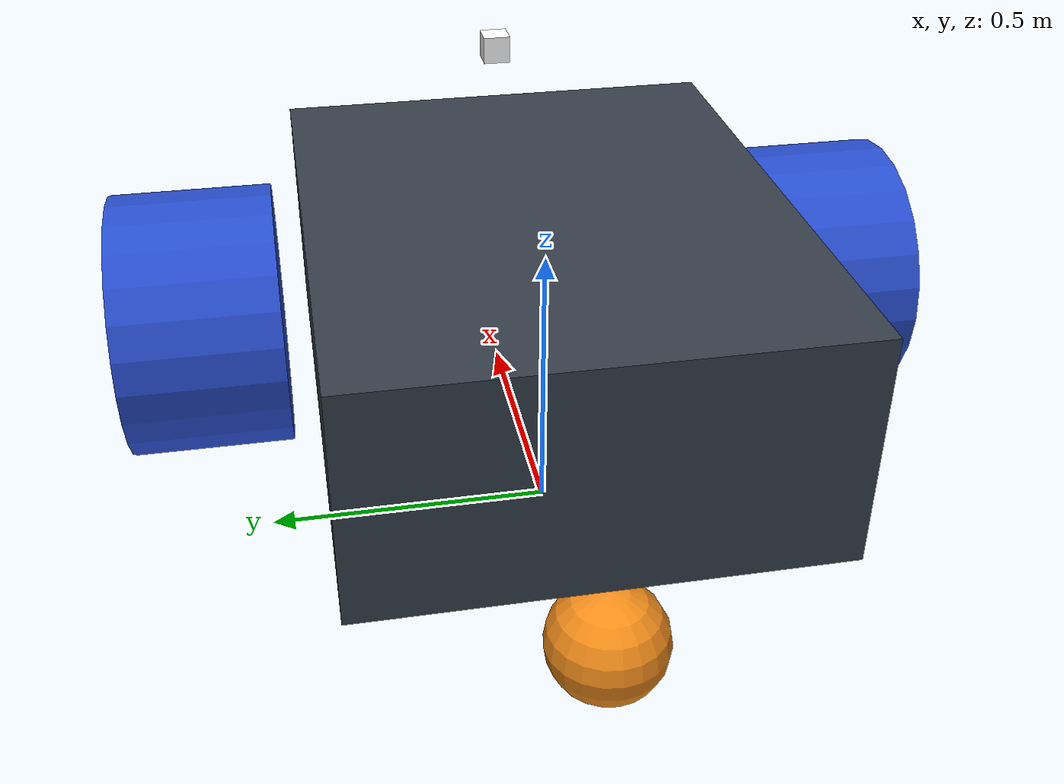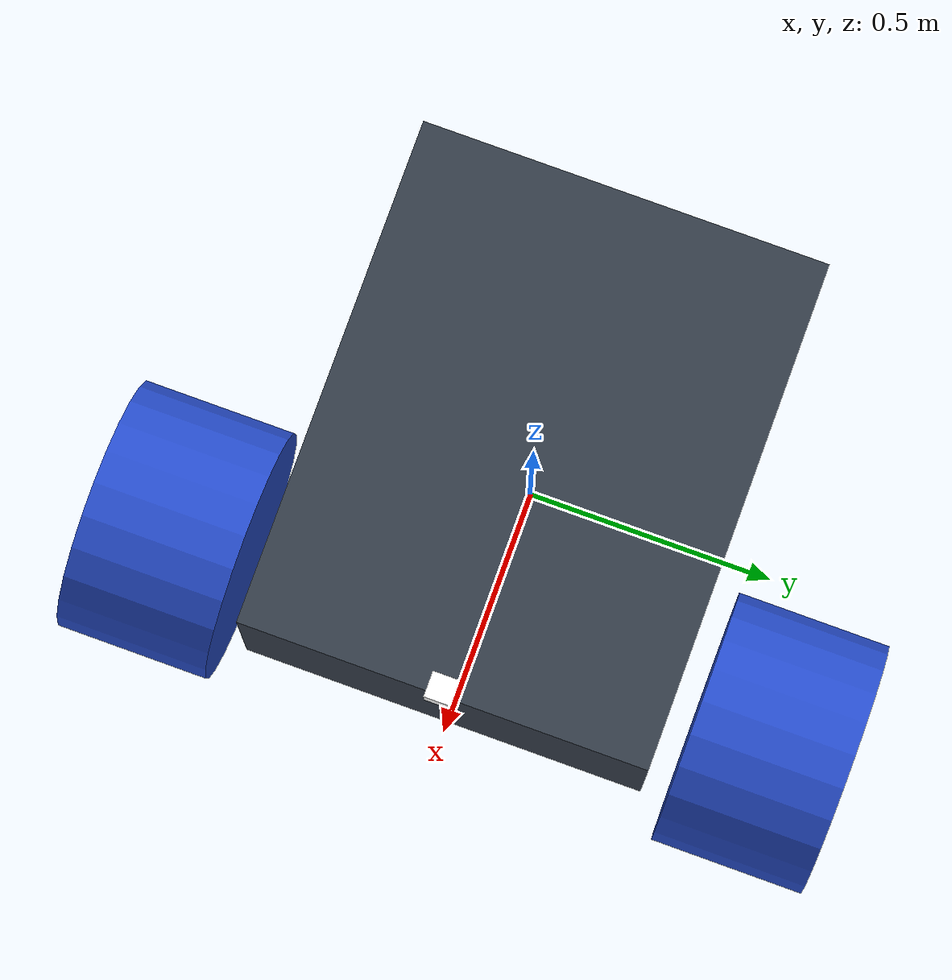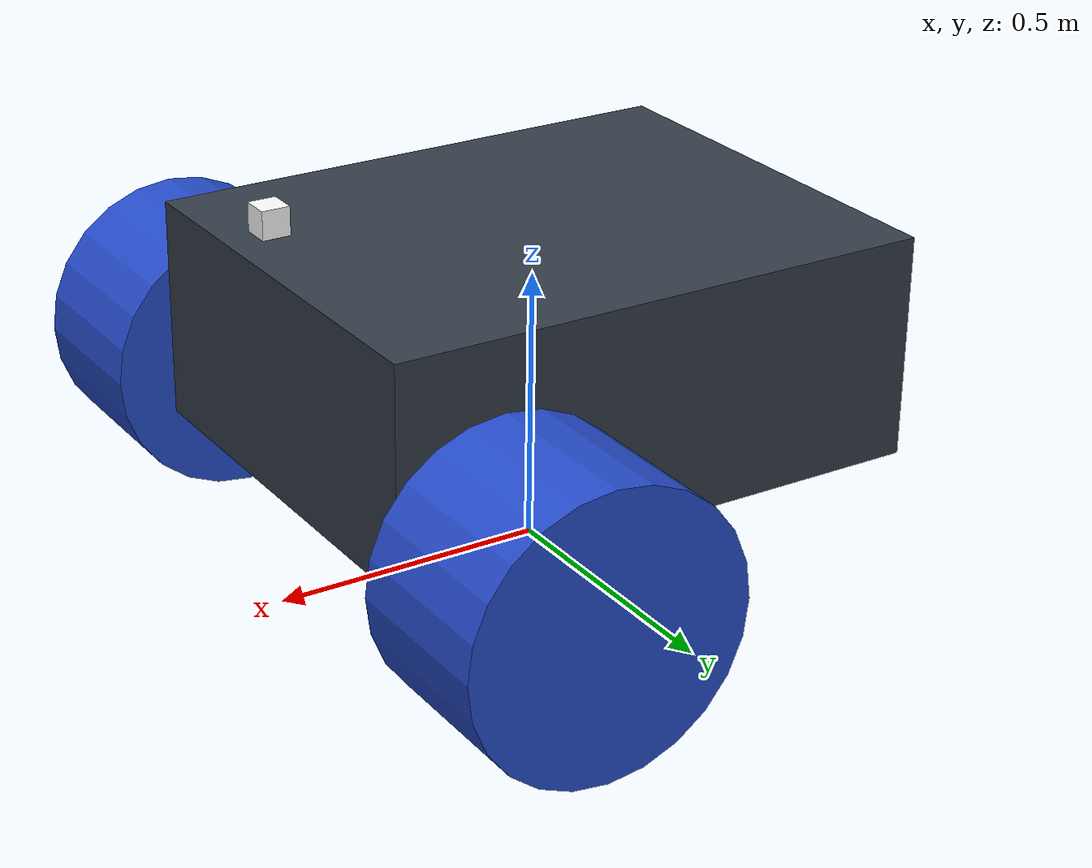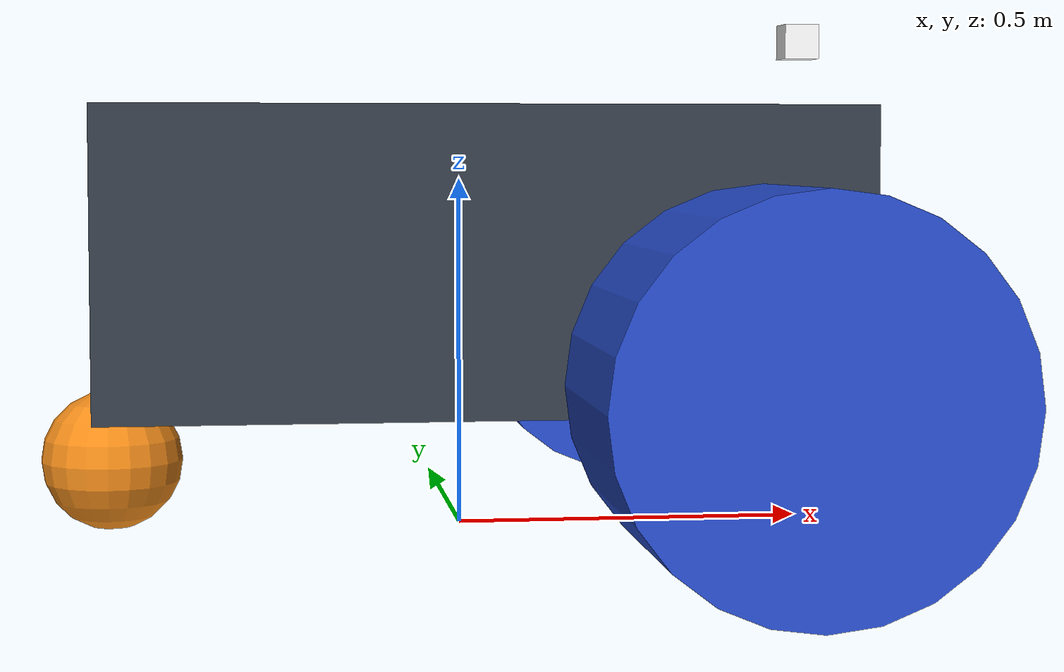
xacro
<?xml version="1.0" ?>

<robot name="my_robot"
    xmlns:xacro="https://www.ros.org/wiki/xacro">

    <material name="black">
        <color rgba="0.0 0.0 0.0 1.0"/>
    </material>
    <material name="blue">
        <color rgba="0.203125 0.23828125 0.28515625 1.0"/>
    </material>
    <material name="green">
        <color rgba="0.0 0.8 0.0 1.0"/>
    </material>
    <material name="grey">
        <color rgba="0.2 0.2 0.2 1.0"/>
    </material>
    <material name="orange">
        <color rgba="1.0 0.423529411765 0.0392156862745 1.0"/>
    </material>
    <material name="brown">
        <color rgba="0.870588235294 0.811764705882 0.764705882353 1.0"/>
    </material>
    <material name="red">
        <color rgba="0.80078125 0.12890625 0.1328125 1.0"/>
    </material>
    <material name="white">
        <color rgba="1.0 1.0 1.0 1.0"/>
    </material>
    <gazebo reference="link_chassis">
        <material>Gazebo/Orange</material>
    </gazebo>
    <gazebo reference="link_left_wheel">
        <material>Gazebo/Blue</material>
    </gazebo>
    <gazebo reference="link_right_wheel">
        <material>Gazebo/Blue</material>
    </gazebo>
    <gazebo reference="camera_link">
    <material>Gazebo/Green</material>
    <sensor type="camera" name="camera1">
      <update_rate>30.0</update_rate>
      <camera name="head">
        <horizontal_fov>1.3962634</horizontal_fov>
        <image>
          <width>800</width>
          <height>800</height>
          <format>R8G8B8</format>
        </image>
        <clip>
          <near>0.02</near>
          <far>300</far>
        </clip>
      </camera>
      <plugin name="camera_controller" filename="libgazebo_ros_camera.so">
        <alwaysOn>true</alwaysOn>
        <updateRate>0.0</updateRate>
        <cameraName>my_robot/camera1</cameraName>
        <imageTopicName>image_raw</imageTopicName>
        <cameraInfoTopicName>camera_info</cameraInfoTopicName>
        <frameName>camera</frameName>
        <hackBaseline>0.07</hackBaseline>
        <distortionK1>0.0</distortionK1>
        <distortionK2>0.0</distortionK2>
        <distortionK3>0.0</distortionK3>
        <distortionT1>0.0</distortionT1>
        <distortionT2>0.0</distortionT2>
      </plugin>
    </sensor>
  </gazebo>

    <link name="base_link">
        <visual>
            <geometry>
                <box size =".001 .001 .001"/>
            </geometry>
            <origin rpy="0 0 0" xyz="0 0 0"/>
        </visual>
    </link>

    <link name="link_chassis">
        <!-- pose and inertial -->
        <pose>0 0 1 0 0 0</pose>
        <inertial>
            <mass value="15.0"/>
            <origin xyz="0.0 0 0.1" rpy=" 0 0 0"/>
            <inertia ixx="0.12" ixy="0" ixz="0" iyy="0.1" iyz="0" izz="0.1" />
        </inertial>

        <collision name="collision_chassis">
            <geometry>
                <box size="1 0.8 0.4"/>
            </geometry>
        </collision>

        <visual>
            <origin rpy="0 0 0" xyz="0 0 0.0"/>
            <geometry>
                <box size="1 0.8 0.4"/>
            </geometry>
            <material name="blue"/>
        </visual>

        <collision name='caster_front_collision'>
            <origin xyz="-0.5 0 -0.3" rpy=" 0 0 0"/>
            <geometry>
                <sphere radius="0.1"/>
            </geometry>
            <surface>
                <friction>
                    <ode>
                        <mu>0</mu>
                        <mu2>0</mu2>
                        <slip1>1.0</slip1>
                        <slip2>1.0</slip2>
                    </ode>
                </friction>
            </surface>
        </collision>

        <visual name='caster_front_visual'>
            <origin xyz="-0.5 0 -0.3" rpy=" 0 0 0"/>
            <geometry>
                <sphere radius="0.1"/>
            </geometry>
        </visual>

    </link>
    <!--   Joint for chassis  -->
    <joint name="joint_chassis" type="continuous">
        <origin rpy="0 0 0" xyz="0 0 0.4"/>
        <child link="link_chassis" />
        <parent link="base_link"/>
        <axis rpy="0 0 0" xyz="0 1 0"/>
        <limit effort="10000" velocity="1000"/>
        <joint_properties damping="1.0" friction="1.0" />
    </joint>

    <!-- Create camera link -->
    <link name = "camera_link">
        <inertial>
            <mass value="5" />
            <origin xyz="0 0 0" rpy="0 0 0"/>
            <box_inertia m="5" x="0.05" y="0.05" z="0.05" />
            <inertia ixx="1e-6" ixy="0" ixz="0" iyy="1e-6" iyz="0" izz="1e-6" />
        </inertial>
        <collision name="collision_camera">
            <geometry>
                <box size="0.05 0.05 0.05"/>
            </geometry>
        </collision>
        <visual>
            <origin rpy="0 0 0" xyz="0 0 0.0"/>
            <geometry>
                <box size="0.05 0.05 0.05"/>
            </geometry>
            <material name="white"/>
        </visual>
    </link>
    <joint name = "joint_camera" type = "continuous">
        <origin rpy="0 0 0" xyz="0.5 0 0.3"/>
        <child link="camera_link" />
        <parent link="link_chassis"/>
        <axis rpy="0 0 0" xyz="0 1 0"/>
        <limit effort="10000" velocity="1000"/>
        <joint_properties damping="1.0" friction="1.0" />
    </joint>

    <!-- Create wheel right -->
    <link name="link_right_wheel">
         <inertial>
            <origin xyz="0 0 0" rpy="0 1.5707 1.5707"/>
            <mass value="5"/>
            <inertia ixx=".1" ixy="0.0" ixz="0.0" iyy=".1" iyz="0.0" izz=".1"/>
        </inertial>

        <collision name="link_right_wheel_collision">
            <origin rpy="0 1.5707 1.5707" xyz="0 0 0" />
            <geometry>
                <cylinder length="0.3" radius="0.25"/>
            </geometry>
        </collision>

        <visual name="link_right_wheel_visual">
            <origin rpy="0 1.5707 1.5707" xyz="0 0 0"/>
            <geometry>
                <cylinder length="0.3" radius="0.25"/>
            </geometry>
        </visual>
    </link>

    <!--   Joint for right wheel  -->
    <joint name="joint_right_wheel" type="continuous">
        <origin rpy="0 0 0" xyz="0.333838 -0.6 -0.15"/>
        <child link="link_right_wheel" />
        <parent link="link_chassis"/>
        <axis xyz="0 1 0" rpy="0 0 0"/>
        <limit effort="10000" velocity="1000"/>
        <joint_properties damping="1.0" friction="1.0"/>
    </joint>

    <!-- Left Wheel link -->
    <link name="link_left_wheel">
         <inertial>
            <origin xyz="0 0 0" rpy="0 1.5707 1.5707"/>
            <mass value="5"/>
            <inertia ixx=".1" ixy="0.0" ixz="0.0" iyy=".1" iyz="0.0" izz=".1"/>
        </inertial>

        <collision name="link_left_wheel_collision">
            <origin rpy="0 1.5707 1.5707" xyz="0 0 0" />
            <geometry>
                <cylinder length="0.3" radius="0.25"/>
            </geometry>
        </collision>

        <visual name="link_left_wheel_visual">
            <origin rpy="0 1.5707 1.5707" xyz="0 0 0"/>
            <geometry>
                <cylinder length="0.3" radius="0.25"/>
            </geometry>
        </visual>

    </link>

    <!--   Joint for right wheel  -->
    <joint name="joint_left_wheel" type="continuous">
        <origin rpy="0 0 0" xyz="0.333838 0.6 -0.15"/>
        <child link="link_left_wheel" />
        <parent link="link_chassis"/>
        <axis xyz="0 1 0" rpy="0 0 0"/>
        <limit effort="10000" velocity="1000"/>
        <joint_properties damping="1.0" friction="1.0"/>
    </joint>

</robot>
